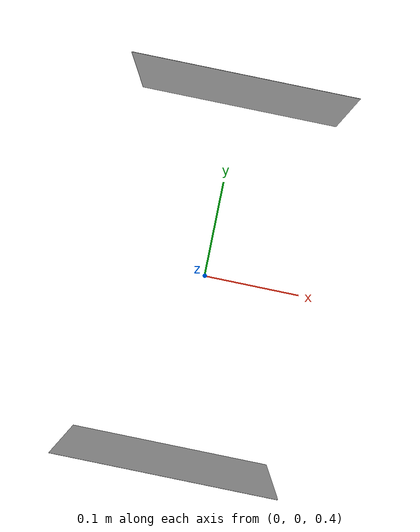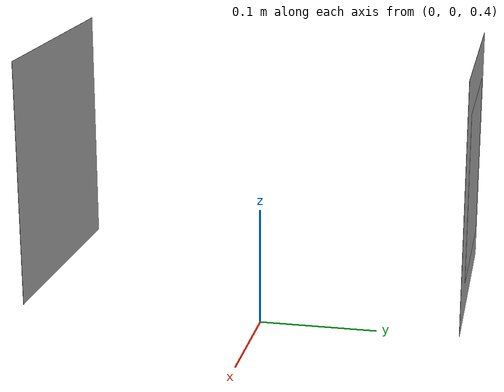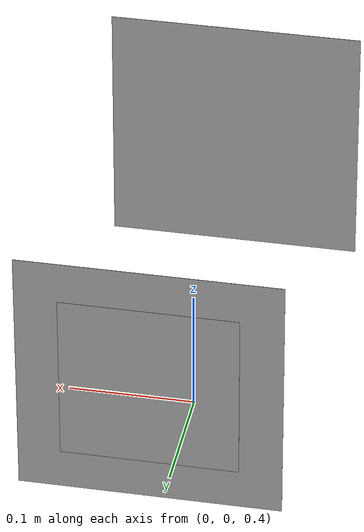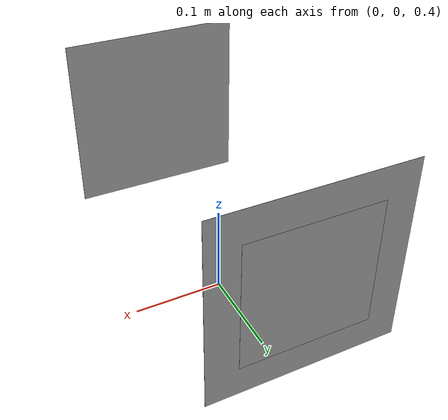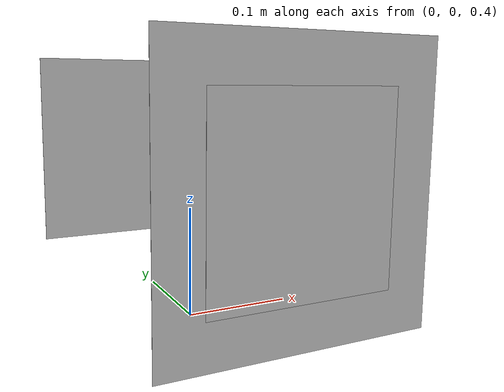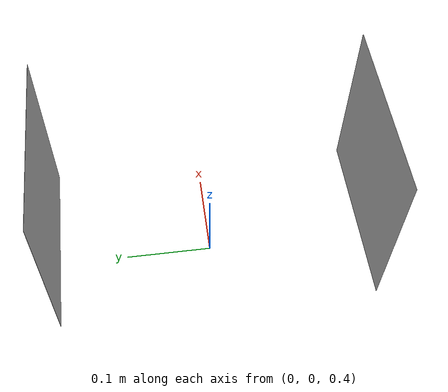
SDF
<?xml version="1.0" ?>
<sdf version="1.4">
  <model name="tag">
    <static>true</static>
<link name="link">
<pose>0 0 0 0 0 0 </pose>
      <gravity>false</gravity>
      <!-- White background for tag -->

      <visual name="tag_bg_1">
        <cast_shadows>false</cast_shadows>
        <pose>0 -0.175 0.54 1.57 0 0</pose>
        <geometry>
          <plane>
            <normal>0 0 1</normal>
            <size>0.2 0.2</size>
          </plane>
        </geometry>
	<material>
          <script>
            <uri>model://tags/materials/scripts</uri>
            <uri>model://tags/materials/textures</uri>
            <name>tag/empty</name>
          </script>
	</material>
      </visual>
      <visual name="tag_bg_2">
        <cast_shadows>false</cast_shadows>
        <pose>0 0.175 0.54 -1.57 0 0</pose>
        <geometry>
          <plane>
            <normal>0 0 1</normal>
            <size>0.2 0.2</size>
          </plane>
        </geometry>
	<material>
          <script>
            <uri>model://tags/materials/scripts</uri>
            <uri>model://tags/materials/textures</uri>
            <name>tag/empty</name>
          </script>
	</material>
      </visual>

      <visual name="tag_input">
        <cast_shadows>false</cast_shadows>
        <pose>0 -0.176 0.54 1.57 0 0</pose>
        <geometry>
          <plane>
            <normal>0 0 1</normal>
            <size>0.135 0.135</size>
          </plane>
        </geometry>
	<material>
          <script>
            <uri>model://tags/materials/scripts</uri>
            <uri>model://tags/materials/textures</uri>
            <name>tag/C-BSI</name>
          </script>
	</material>
      </visual>
      <visual name="tag_output">
        <cast_shadows>false</cast_shadows>
        <pose>0 0.176 0.54 1.57 0 3.14</pose>
        <geometry>
          <plane>
            <normal>0 0 1</normal>
            <size>0.135 0.135</size>
          </plane>
        </geometry>
	<material>
          <script>
            <uri>model://tags/materials/scripts</uri>
            <uri>model://tags/materials/textures</uri>
            <name>tag/C-BSO</name>
          </script>
	</material>
      </visual>
    </link>
  </model>
</sdf>
